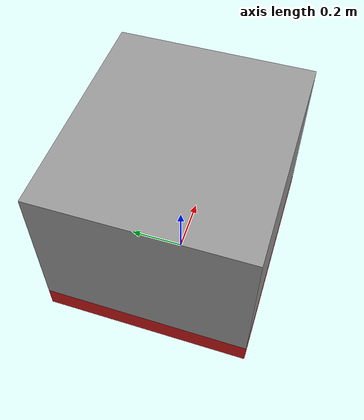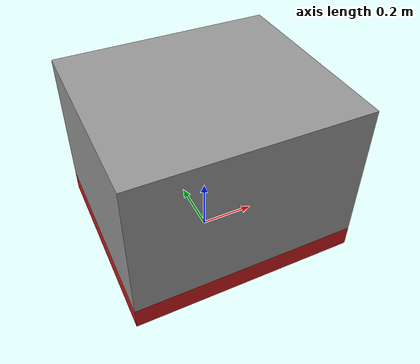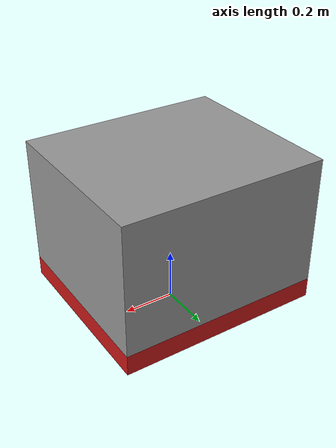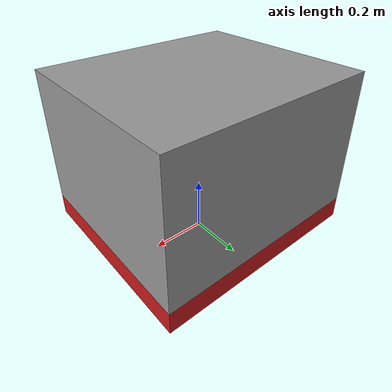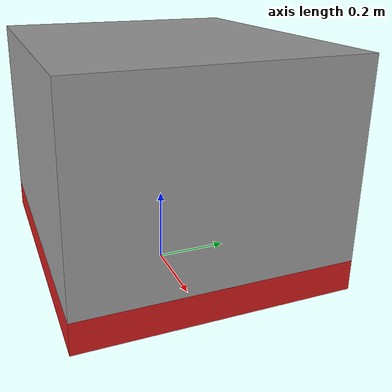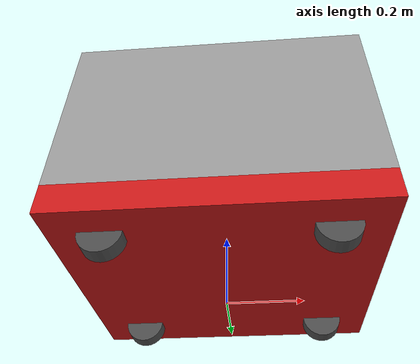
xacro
<?xml version="1.0"?>
<robot xmlns:xacro="http://www.ros.org/wiki/xacro" name="rc2026_robot">

  <!-- 底盘参数 (可通过 xacro 参数覆盖) -->
  <xacro:arg name="chassis_width"   default="0.80003"/>
  <xacro:arg name="chassis_depth"   default="0.70025"/>
  <xacro:arg name="chassis_height"  default="0.50798"/>
  <xacro:arg name="wheel_radius"    default="0.053905"/>
  <xacro:arg name="wheel_width"     default="0.045"/>
  <xacro:arg name="wheel_base_x"    default="0.27"/>
  <xacro:arg name="wheel_base_y"    default="0.25"/>

  <!-- 传感器安装位置 -->
  <xacro:arg name="camera_x" default="0.05"/>
  <xacro:arg name="camera_y" default="0.0"/>
  <xacro:arg name="camera_z" default="0.45"/>
  <xacro:arg name="lidar_x"  default="0.0"/>
  <xacro:arg name="lidar_y"  default="0.0"/>
  <xacro:arg name="lidar_z"  default="0.55"/>

  <!-- 机械臂安装位置 -->
  <xacro:arg name="arm_x" default="0.0"/>
  <xacro:arg name="arm_y" default="0.0"/>
  <xacro:arg name="arm_z" default="0.05"/>

  <xacro:property name="cw"  value="$(arg chassis_width)"/>
  <xacro:property name="cd"  value="$(arg chassis_depth)"/>
  <xacro:property name="ch"  value="$(arg chassis_height)"/>
  <xacro:property name="wr"  value="$(arg wheel_radius)"/>
  <xacro:property name="ww"  value="$(arg wheel_width)"/>
  <xacro:property name="wbx" value="$(arg wheel_base_x)"/>
  <xacro:property name="wby" value="$(arg wheel_base_y)"/>

  <!-- ══════════════ 材质定义 ══════════════ -->
  <material name="grey">
    <color rgba="0.6 0.6 0.6 1.0"/>
  </material>
  <material name="dark_grey">
    <color rgba="0.3 0.3 0.3 1.0"/>
  </material>
  <material name="red">
    <color rgba="0.8 0.1 0.1 1.0"/>
  </material>
  <material name="blue">
    <color rgba="0.1 0.1 0.8 1.0"/>
  </material>
  <material name="green">
    <color rgba="0.1 0.6 0.1 1.0"/>
  </material>

  <!-- ══════════════ base_footprint ══════════════ -->
  <link name="base_footprint"/>

  <joint name="base_footprint_joint" type="fixed">
    <parent link="base_footprint"/>
    <child link="base_link"/>
    <origin xyz="0 0 ${wr}" rpy="0 0 0"/>
  </joint>

  <!-- ══════════════ base_link (底盘主体) ══════════════ -->
  <link name="base_link">
    <visual>
      <geometry>
        <box size="${cw} ${cd} 0.08"/>
      </geometry>
      <origin xyz="0 0 0.04" rpy="0 0 0"/>
      <material name="red"/>
    </visual>
    <collision>
      <geometry>
        <box size="${cw} ${cd} 0.08"/>
      </geometry>
      <origin xyz="0 0 0.04" rpy="0 0 0"/>
    </collision>
    <inertial>
      <mass value="25.0"/>
      <inertia ixx="1.0" ixy="0" ixz="0" iyy="1.0" iyz="0" izz="1.5"/>
    </inertial>
  </link>

  <!-- ══════════════ 框架上部结构 ══════════════ -->
  <link name="frame_upper">
    <visual>
      <geometry>
        <box size="${cw} ${cd} ${ch}"/>
      </geometry>
      <origin xyz="0 0 ${ch/2}" rpy="0 0 0"/>
      <material name="grey"/>
    </visual>
    <collision>
      <geometry>
        <box size="${cw} ${cd} ${ch}"/>
      </geometry>
      <origin xyz="0 0 ${ch/2}" rpy="0 0 0"/>
    </collision>
    <inertial>
      <mass value="5.0"/>
      <origin xyz="0 0 ${ch/2}"/>
      <inertia ixx="0.3" ixy="0" ixz="0" iyy="0.3" iyz="0" izz="0.2"/>
    </inertial>
  </link>

  <joint name="frame_upper_joint" type="fixed">
    <parent link="base_link"/>
    <child link="frame_upper"/>
    <origin xyz="0 0 0.08" rpy="0 0 0"/>
  </joint>

  <!-- ══════════════ 万向轮宏定义 ══════════════ -->
  <xacro:macro name="omni_wheel" params="name x y">
    <link name="${name}_link">
      <visual>
        <geometry>
          <cylinder radius="${wr}" length="${ww}"/>
        </geometry>
        <origin xyz="0 0 0" rpy="${pi/2} 0 0"/>
        <material name="dark_grey"/>
      </visual>
      <collision>
        <geometry>
          <cylinder radius="${wr}" length="${ww}"/>
        </geometry>
        <origin xyz="0 0 0" rpy="${pi/2} 0 0"/>
      </collision>
      <inertial>
        <mass value="0.8"/>
        <inertia ixx="0.001" ixy="0" ixz="0" iyy="0.001" iyz="0" izz="0.001"/>
      </inertial>
    </link>

    <joint name="${name}_joint" type="continuous">
      <parent link="base_link"/>
      <child link="${name}_link"/>
      <origin xyz="${x} ${y} 0" rpy="0 0 0"/>
      <axis xyz="0 1 0"/>
      <dynamics damping="0.1" friction="0.05"/>
    </joint>
  </xacro:macro>

  <!-- 四个万向轮 -->
  <xacro:omni_wheel name="wheel_fl" x="${wbx}"  y="${wby}"/>
  <xacro:omni_wheel name="wheel_fr" x="${wbx}"  y="${-wby}"/>
  <xacro:omni_wheel name="wheel_rl" x="${-wbx}" y="${wby}"/>
  <xacro:omni_wheel name="wheel_rr" x="${-wbx}" y="${-wby}"/>

  <!-- ══════════════ 相机 (Intel RealSense D435i) ══════════════ -->
  <link name="camera_link">
    <visual>
      <geometry>
        <box size="0.025 0.09 0.025"/>
      </geometry>
      <material name="grey"/>
    </visual>
    <collision>
      <geometry>
        <box size="0.025 0.09 0.025"/>
      </geometry>
    </collision>
    <inertial>
      <mass value="0.072"/>
      <inertia ixx="0.00001" ixy="0" ixz="0" iyy="0.00001" iyz="0" izz="0.00001"/>
    </inertial>
  </link>

  <joint name="camera_joint" type="fixed">
    <parent link="base_link"/>
    <child link="camera_link"/>
    <origin xyz="$(arg camera_x) $(arg camera_y) $(arg camera_z)"
            rpy="0 0 0"/>
  </joint>

  <!-- D435i 光学坐标系 (Z前 X右 Y下) -->
  <link name="camera_optical_frame"/>

  <joint name="camera_optical_joint" type="fixed">
    <parent link="camera_link"/>
    <child link="camera_optical_frame"/>
    <origin xyz="0 0 0" rpy="${-pi/2} 0 ${-pi/2}"/>
  </joint>

  <!-- ══════════════ 激光雷达 (Livox Mid-360S) ══════════════ -->
  <link name="lidar_link">
    <visual>
      <geometry>
        <cylinder radius="0.05" length="0.06"/>
      </geometry>
      <material name="blue"/>
    </visual>
    <collision>
      <geometry>
        <cylinder radius="0.05" length="0.06"/>
      </geometry>
    </collision>
    <inertial>
      <mass value="0.265"/>
      <inertia ixx="0.0001" ixy="0" ixz="0" iyy="0.0001" iyz="0" izz="0.0001"/>
    </inertial>
  </link>

  <joint name="lidar_joint" type="fixed">
    <parent link="base_link"/>
    <child link="lidar_link"/>
    <origin xyz="$(arg lidar_x) $(arg lidar_y) $(arg lidar_z)"
            rpy="0 0 0"/>
  </joint>

  <!-- ══════════════ 武器头机械臂底座 (占位, 位置待定, 需现场测量标定) ══════════════ -->
  <!-- 用于夹取武器端头, 拾取/释放指令由 ActionGroupCmd id=1/2 发送,
       下位机自动控制对应机械臂, 上位机无需区分两臂。
       安装位置不会远离 D435i 相机(camera_link), 下方 xyz 为临时占位,
       确定安装点后用卷尺测量相对 base_link 的实际偏移并替换。 -->
  <link name="weapon_arm_base_link">
    <visual>
      <geometry>
        <cylinder radius="0.03" length="0.02"/>
      </geometry>
      <material name="blue"/>
    </visual>
    <collision>
      <geometry>
        <cylinder radius="0.03" length="0.02"/>
      </geometry>
    </collision>
    <inertial>
      <mass value="0.1"/>
      <inertia ixx="0.00001" ixy="0" ixz="0" iyy="0.00001" iyz="0" izz="0.00001"/>
    </inertial>
  </link>

  <joint name="weapon_arm_joint" type="fixed">
    <parent link="base_link"/>
    <child link="weapon_arm_base_link"/>
    <!-- TODO: 现场测量后替换 xyz，当前为占位值 (靠近相机前方) -->
    <origin xyz="0.05 0.15 0.30" rpy="0 0 0"/>
  </joint>

  <!-- ══════════════ KFS机械臂底座 (占位符, 待组员替换) ══════════════ -->
  <link name="arm_base_link">
    <visual>
      <geometry>
        <cylinder radius="0.03" length="0.02"/>
      </geometry>
      <material name="green"/>
    </visual>
    <collision>
      <geometry>
        <cylinder radius="0.03" length="0.02"/>
      </geometry>
    </collision>
    <inertial>
      <mass value="0.1"/>
      <inertia ixx="0.00001" ixy="0" ixz="0" iyy="0.00001" iyz="0" izz="0.00001"/>
    </inertial>
  </link>

  <joint name="arm_base_joint" type="fixed">
    <parent link="base_link"/>
    <child link="arm_base_link"/>
    <origin xyz="$(arg arm_x) $(arg arm_y) $(arg arm_z)"
            rpy="0 0 0"/>
  </joint>

  <!-- ══════════════ 机械臂展开姿态 (精对齐用, 占位几何, 需现场标定) ══════════════ -->
  <!-- 代表机械臂完全抬升+前伸+末端旋转朝下后(精对齐动作组完成姿态),
       末端横杆中心相对 arm_base_link 的固定位姿。
       现实现为固定坐标系(单一展开姿态), 不建模抬升/前伸的连续关节,
       因为精对齐阶段不调整机械臂本身位姿, 误差直接转换为底盘 vx/vy。
       下方 xyz 数值为占位估测, 需结合实物测量校正。 -->
  <link name="arm_deployed_link"/>

  <joint name="arm_deployed_joint" type="fixed">
    <parent link="arm_base_link"/>
    <child link="arm_deployed_link"/>
    <origin xyz="0.30 0 0.40" rpy="0 0 0"/>
  </joint>

  <!-- ══════════════ USB 相机 (末端横杆, 精对齐用, 镜头朝下) ══════════════ -->
  <link name="usb_camera_link">
    <visual>
      <geometry>
        <box size="0.03 0.03 0.03"/>
      </geometry>
      <material name="dark_grey"/>
    </visual>
    <collision>
      <geometry>
        <box size="0.03 0.03 0.03"/>
      </geometry>
    </collision>
    <inertial>
      <mass value="0.05"/>
      <inertia ixx="0.00001" ixy="0" ixz="0" iyy="0.00001" iyz="0" izz="0.00001"/>
    </inertial>
  </link>

  <joint name="usb_camera_joint" type="fixed">
    <parent link="arm_deployed_link"/>
    <child link="usb_camera_link"/>
    <!-- 镜头朝下: 绕Y轴+90°使 camera_link 的 X(前) 轴指向 -Z(地面) -->
    <origin xyz="0 0 0" rpy="0 ${pi/2} 0"/>
  </joint>

  <!-- USB 相机光学坐标系 (Z指向镜头朝向/地面, X右 Y下), 供图像处理使用 -->
  <link name="usb_camera_optical_frame"/>

  <joint name="usb_camera_optical_joint" type="fixed">
    <parent link="usb_camera_link"/>
    <child link="usb_camera_optical_frame"/>
    <origin xyz="0 0 0" rpy="${-pi/2} 0 ${-pi/2}"/>
  </joint>

  <!-- ══════════════ 吸盘 (末端横杆, 与USB相机存在小偏移, 需现场标定) ══════════════ -->
  <link name="suction_link">
    <visual>
      <geometry>
        <cylinder radius="0.025" length="0.02"/>
      </geometry>
      <material name="green"/>
    </visual>
    <collision>
      <geometry>
        <cylinder radius="0.025" length="0.02"/>
      </geometry>
    </collision>
    <inertial>
      <mass value="0.05"/>
      <inertia ixx="0.00001" ixy="0" ixz="0" iyy="0.00001" iyz="0" izz="0.00001"/>
    </inertial>
  </link>

  <joint name="suction_joint" type="fixed">
    <parent link="arm_deployed_link"/>
    <child link="suction_link"/>
    <origin xyz="0.03 0 -0.02" rpy="0 0 0"/>
  </joint>

</robot>
